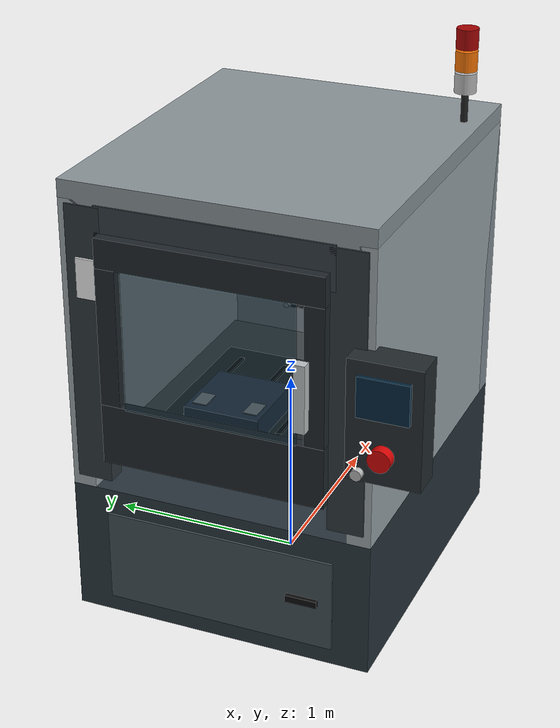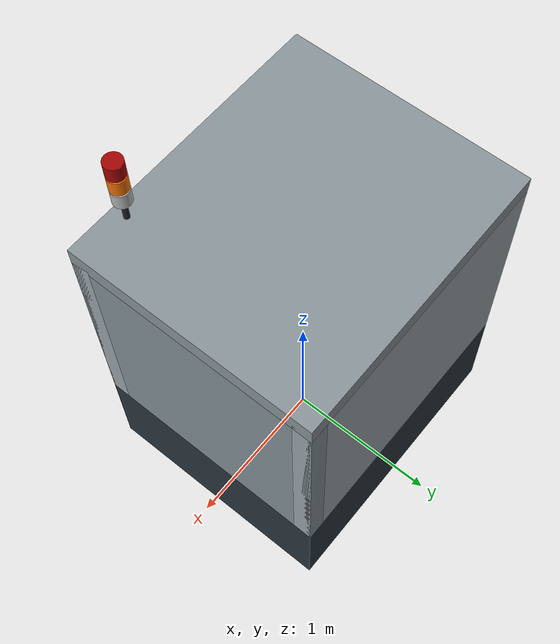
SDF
<?xml version="1.0"?>
<sdf version="1.9">
  <model name="cnc_machine">
    <static>false</static>
    <self_collide>false</self_collide>

    <!-- The enclosure is dynamic only so its door can move. This joint keeps
         the cabinet rigidly attached to the factory floor. -->
    <joint name="cabinet_world_joint" type="fixed">
      <parent>world</parent>
      <child>cabinet</child>
    </joint>

    <link name="cabinet">
      <inertial>
        <pose>0 0 1.05 0 0 0</pose>
        <mass>850</mass>
        <inertia>
          <ixx>240</ixx><iyy>280</iyy><izz>310</izz>
        </inertia>
      </inertial>

      <!-- Base cabinet and machine feet. -->
      <collision name="base_collision">
        <pose>0 0 0.35 0 0 0</pose>
        <geometry><box><size>1.80 1.55 0.70</size></box></geometry>
      </collision>
      <visual name="base_visual">
        <pose>0 0 0.35 0 0 0</pose>
        <geometry><box><size>1.80 1.55 0.70</size></box></geometry>
        <material><ambient>0.12 0.16 0.19 1</ambient><diffuse>0.16 0.21 0.24 1</diffuse><specular>0.35 0.35 0.35 1</specular></material>
      </visual>
      <visual name="lower_access_panel">
        <pose>-0.906 0 0.33 0 0 0</pose>
        <geometry><box><size>0.015 1.18 0.48</size></box></geometry>
        <material><diffuse>0.26 0.31 0.34 1</diffuse></material>
      </visual>
      <visual name="panel_handle">
        <pose>-0.92 -0.44 0.34 0 0 0</pose>
        <geometry><box><size>0.035 0.16 0.035</size></box></geometry>
        <material><diffuse>0.04 0.04 0.04 1</diffuse></material>
      </visual>

      <!-- Rear and side enclosure leave a genuine front opening. -->
      <collision name="rear_collision">
        <pose>0.84 0 1.45 0 0 0</pose>
        <geometry><box><size>0.12 1.55 1.50</size></box></geometry>
      </collision>
      <visual name="rear_visual">
        <pose>0.84 0 1.45 0 0 0</pose>
        <geometry><box><size>0.12 1.55 1.50</size></box></geometry>
        <material><diffuse>0.52 0.57 0.60 1</diffuse></material>
      </visual>
      <collision name="left_wall_collision">
        <pose>0 0.715 1.45 0 0 0</pose>
        <geometry><box><size>1.80 0.12 1.50</size></box></geometry>
      </collision>
      <visual name="left_wall_visual">
        <pose>0 0.715 1.45 0 0 0</pose>
        <geometry><box><size>1.80 0.12 1.50</size></box></geometry>
        <material><diffuse>0.62 0.66 0.68 1</diffuse></material>
      </visual>
      <collision name="right_wall_collision">
        <pose>0 -0.715 1.45 0 0 0</pose>
        <geometry><box><size>1.80 0.12 1.50</size></box></geometry>
      </collision>
      <visual name="right_wall_visual">
        <pose>0 -0.715 1.45 0 0 0</pose>
        <geometry><box><size>1.80 0.12 1.50</size></box></geometry>
        <material><diffuse>0.62 0.66 0.68 1</diffuse></material>
      </visual>
      <collision name="roof_collision">
        <pose>0 0 2.23 0 0 0</pose>
        <geometry><box><size>1.80 1.55 0.12</size></box></geometry>
      </collision>
      <visual name="roof_visual">
        <pose>0 0 2.23 0 0 0</pose>
        <geometry><box><size>1.80 1.55 0.12</size></box></geometry>
        <material><diffuse>0.55 0.59 0.61 1</diffuse></material>
      </visual>

      <!-- Front posts and lintel form the safety-door aperture. -->
      <collision name="front_left_post_collision">
        <pose>-0.86 0.65 1.47 0 0 0</pose>
        <geometry><box><size>0.10 0.18 1.42</size></box></geometry>
      </collision>
      <visual name="front_left_post_visual">
        <pose>-0.86 0.65 1.47 0 0 0</pose>
        <geometry><box><size>0.10 0.18 1.42</size></box></geometry>
        <material><diffuse>0.18 0.22 0.24 1</diffuse></material>
      </visual>
      <collision name="front_right_post_collision">
        <pose>-0.86 -0.65 1.47 0 0 0</pose>
        <geometry><box><size>0.10 0.18 1.42</size></box></geometry>
      </collision>
      <visual name="front_right_post_visual">
        <pose>-0.86 -0.65 1.47 0 0 0</pose>
        <geometry><box><size>0.10 0.18 1.42</size></box></geometry>
        <material><diffuse>0.18 0.22 0.24 1</diffuse></material>
      </visual>
      <collision name="front_lintel_collision">
        <pose>-0.86 0 2.08 0 0 0</pose>
        <geometry><box><size>0.10 1.18 0.22</size></box></geometry>
      </collision>
      <visual name="front_lintel_visual">
        <pose>-0.86 0 2.08 0 0 0</pose>
        <geometry><box><size>0.10 1.18 0.22</size></box></geometry>
        <material><diffuse>0.20 0.24 0.26 1</diffuse></material>
      </visual>

      <!-- Sloped chip pan, T-slot work table and two-jaw fixture. -->
      <collision name="chip_pan_collision">
        <pose>-0.05 0 0.87 0 0 0</pose>
        <geometry><box><size>1.45 1.24 0.10</size></box></geometry>
      </collision>
      <visual name="chip_pan_visual">
        <pose>-0.05 0 0.87 0 0 0</pose>
        <geometry><box><size>1.45 1.24 0.10</size></box></geometry>
        <material><diffuse>0.25 0.28 0.29 1</diffuse><specular>0.8 0.8 0.8 1</specular></material>
      </visual>
      <!-- The loading vise sits near the door on an extended table, within
           the UR5e workspace from a collision-free parking pose. -->
      <collision name="work_table_collision">
        <pose>-0.40 0 1.01 0 0 0</pose>
        <geometry><box><size>0.90 0.72 0.16</size></box></geometry>
      </collision>
      <visual name="work_table_visual">
        <pose>-0.40 0 1.01 0 0 0</pose>
        <geometry><box><size>0.90 0.72 0.16</size></box></geometry>
        <material><diffuse>0.12 0.14 0.15 1</diffuse><specular>0.9 0.9 0.9 1</specular></material>
      </visual>
      <visual name="table_slot_1"><pose>-0.40 -0.24 1.10 0 0 0</pose><geometry><box><size>0.66 0.025 0.012</size></box></geometry><material><diffuse>0.02 0.02 0.02 1</diffuse></material></visual>
      <visual name="table_slot_2"><pose>-0.40 0 1.10 0 0 0</pose><geometry><box><size>0.66 0.025 0.012</size></box></geometry><material><diffuse>0.02 0.02 0.02 1</diffuse></material></visual>
      <visual name="table_slot_3"><pose>-0.40 0.24 1.10 0 0 0</pose><geometry><box><size>0.66 0.025 0.012</size></box></geometry><material><diffuse>0.02 0.02 0.02 1</diffuse></material></visual>
      <!-- The zero-point pallet extends to the work-table front edge so the
           full 50 mm stock footprint remains supported at the loading datum. -->
      <collision name="fixture_base_collision"><pose>-0.65 0 1.16 0 0 0</pose><geometry><box><size>0.40 0.38 0.12</size></box></geometry></collision>
      <visual name="fixture_base_visual"><pose>-0.65 0 1.16 0 0 0</pose><geometry><box><size>0.40 0.38 0.12</size></box></geometry><material><diffuse>0.16 0.22 0.30 1</diffuse></material></visual>
      <!-- Flush locator marks represent a zero-point pallet. The physical
           fixture base supports stock without protruding into the wrist corridor. -->
      <visual name="fixture_jaw_left_visual"><pose>-0.75 0.13 1.2225 0 0 0</pose><geometry><box><size>0.11 0.07 0.005</size></box></geometry><material><diffuse>0.52 0.55 0.56 1</diffuse></material></visual>
      <visual name="fixture_jaw_right_visual"><pose>-0.75 -0.13 1.2225 0 0 0</pose><geometry><box><size>0.11 0.07 0.005</size></box></geometry><material><diffuse>0.52 0.55 0.56 1</diffuse></material></visual>

      <!-- Spindle head is visually detailed and physically blocks invalid paths. -->
      <collision name="spindle_head_collision"><pose>0.56 0 1.55 0 0 0</pose><geometry><box><size>0.46 0.52 0.58</size></box></geometry></collision>
      <visual name="spindle_head_visual"><pose>0.56 0 1.55 0 0 0</pose><geometry><box><size>0.46 0.52 0.58</size></box></geometry><material><diffuse>0.43 0.47 0.48 1</diffuse></material></visual>
      <collision name="spindle_nose_collision"><pose>0.25 0 1.44 0 1.5708 0</pose><geometry><cylinder><radius>0.105</radius><length>0.22</length></cylinder></geometry></collision>
      <visual name="spindle_nose_visual"><pose>0.25 0 1.44 0 1.5708 0</pose><geometry><cylinder><radius>0.105</radius><length>0.22</length></cylinder></geometry><material><diffuse>0.16 0.17 0.18 1</diffuse><specular>1 1 1 1</specular></material></visual>
      <visual name="tool_holder"><pose>0.09 0 1.44 0 1.5708 0</pose><geometry><cylinder><radius>0.050</radius><length>0.13</length></cylinder></geometry><material><diffuse>0.08 0.09 0.10 1</diffuse></material></visual>
      <visual name="cutting_tool"><pose>-0.015 0 1.44 0 1.5708 0</pose><geometry><cylinder><radius>0.014</radius><length>0.10</length></cylinder></geometry><material><diffuse>0.55 0.58 0.60 1</diffuse></material></visual>

      <!-- Operator panel, E-stop, status display and stack light. -->
      <collision name="hmi_collision"><pose>-0.93 -0.86 1.42 0 0 0</pose><geometry><box><size>0.16 0.36 0.60</size></box></geometry></collision>
      <visual name="hmi_body"><pose>-0.93 -0.86 1.42 0 0 0</pose><geometry><box><size>0.16 0.36 0.60</size></box></geometry><material><diffuse>0.14 0.17 0.18 1</diffuse></material></visual>
      <visual name="hmi_screen"><pose>-1.02 -0.86 1.55 0 0 0</pose><geometry><box><size>0.025 0.25 0.20</size></box></geometry><material><emissive>0.02 0.30 0.52 1</emissive><diffuse>0.02 0.15 0.24 1</diffuse></material></visual>
      <visual name="emergency_stop"><pose>-1.04 -0.86 1.27 0 1.5708 0</pose><geometry><cylinder><radius>0.055</radius><length>0.055</length></cylinder></geometry><material><diffuse>0.85 0.02 0.02 1</diffuse></material></visual>
      <visual name="cycle_start"><pose>-1.04 -0.75 1.17 0 1.5708 0</pose><geometry><cylinder><radius>0.027</radius><length>0.035</length></cylinder></geometry><material><emissive>0.02 0.65 0.08 1</emissive></material></visual>
      <visual name="stack_pole"><pose>0.57 -0.68 2.46 0 0 0</pose><geometry><cylinder><radius>0.018</radius><length>0.42</length></cylinder></geometry><material><diffuse>0.12 0.12 0.12 1</diffuse></material></visual>
      <visual name="stack_red"><pose>0.57 -0.68 2.71 0 0 0</pose><geometry><cylinder><radius>0.055</radius><length>0.10</length></cylinder></geometry><material><diffuse>0.65 0.02 0.02 1</diffuse></material></visual>
      <visual name="stack_amber"><pose>0.57 -0.68 2.60 0 0 0</pose><geometry><cylinder><radius>0.055</radius><length>0.10</length></cylinder></geometry><material><diffuse>0.95 0.45 0.02 1</diffuse></material></visual>
      <visual name="stack_green"><pose>0.57 -0.68 2.49 0 0 0</pose><geometry><cylinder><radius>0.055</radius><length>0.10</length></cylinder></geometry><material><emissive>0.02 0.42 0.05 1</emissive></material></visual>

      <!-- AprilTag mounting plate; the detector texture is a separate asset step. -->
      <visual name="tag_plate"><pose>-0.93 0.58 1.83 0 1.5708 0</pose><geometry><box><size>0.20 0.20 0.012</size></box></geometry><material><diffuse>0.96 0.96 0.96 1</diffuse></material></visual>

      <!-- These low-rate contacts make model-to-planning-scene mismatches
           observable in regression logs. They do not affect collision forces. -->
      <sensor name="base_contact" type="contact">
        <always_on>true</always_on><update_rate>20</update_rate>
        <contact><collision>base_collision</collision>
          <topic>/factory/cnc/contacts</topic></contact>
      </sensor>
      <sensor name="chip_pan_contact" type="contact">
        <always_on>true</always_on><update_rate>20</update_rate>
        <contact><collision>chip_pan_collision</collision>
          <topic>/factory/cnc/contacts</topic></contact>
      </sensor>
      <sensor name="work_table_contact" type="contact">
        <always_on>true</always_on><update_rate>20</update_rate>
        <contact><collision>work_table_collision</collision>
          <topic>/factory/cnc/contacts</topic></contact>
      </sensor>
      <sensor name="fixture_base_contact" type="contact">
        <always_on>true</always_on><update_rate>20</update_rate>
        <contact><collision>fixture_base_collision</collision>
          <topic>/factory/cnc/contacts</topic></contact>
      </sensor>
      <sensor name="front_left_post_contact" type="contact">
        <always_on>true</always_on><update_rate>20</update_rate>
        <contact><collision>front_left_post_collision</collision>
          <topic>/factory/cnc/contacts</topic></contact>
      </sensor>
      <sensor name="front_right_post_contact" type="contact">
        <always_on>true</always_on><update_rate>20</update_rate>
        <contact><collision>front_right_post_collision</collision>
          <topic>/factory/cnc/contacts</topic></contact>
      </sensor>
      <sensor name="front_lintel_contact" type="contact">
        <always_on>true</always_on><update_rate>20</update_rate>
        <contact><collision>front_lintel_collision</collision>
          <topic>/factory/cnc/contacts</topic></contact>
      </sensor>
    </link>

    <link name="sliding_door">
      <pose>-0.94 0 1.48 0 0 0</pose>
      <inertial><mass>38</mass><inertia><ixx>5.4</ixx><iyy>1.9</iyy><izz>6.8</izz></inertia></inertial>
      <collision name="door_collision"><geometry><box><size>0.055 1.13 1.16</size></box></geometry></collision>
      <!-- Four visual rails leave a genuine transparent window opening. The
           single full-size collision still represents the safety door. -->
      <visual name="door_frame_top"><pose>0 0 0.505 0 0 0</pose><geometry><box><size>0.055 1.13 0.15</size></box></geometry><material><diffuse>0.12 0.15 0.17 1</diffuse></material></visual>
      <visual name="door_frame_bottom"><pose>0 0 -0.425 0 0 0</pose><geometry><box><size>0.055 1.13 0.31</size></box></geometry><material><diffuse>0.12 0.15 0.17 1</diffuse></material></visual>
      <visual name="door_frame_left"><pose>0 0.515 0.08 0 0 0</pose><geometry><box><size>0.055 0.10 0.70</size></box></geometry><material><diffuse>0.12 0.15 0.17 1</diffuse></material></visual>
      <visual name="door_frame_right"><pose>0 -0.515 0.08 0 0 0</pose><geometry><box><size>0.055 0.10 0.70</size></box></geometry><material><diffuse>0.12 0.15 0.17 1</diffuse></material></visual>

      <visual name="window"><pose>-0.032 0 0.08 0 0 0</pose><geometry><box><size>0.018 0.86 0.70</size></box></geometry><material><ambient>0.04 0.13 0.18 0.45</ambient><diffuse>0.05 0.18 0.24 0.45</diffuse><specular>0.8 0.8 0.8 0.45</specular></material><transparency>0.55</transparency></visual>
      <visual name="door_handle"><pose>-0.07 -0.47 0 0 0 0</pose><geometry><box><size>0.05 0.055 0.34</size></box></geometry><material><diffuse>0.75 0.77 0.78 1</diffuse></material></visual>
      <sensor name="door_contact" type="contact">
        <always_on>true</always_on><update_rate>20</update_rate>
        <contact><collision>door_collision</collision>
          <topic>/factory/cnc/contacts</topic></contact>
      </sensor>
    </link>
    <joint name="sliding_door_joint" type="prismatic">
      <parent>cabinet</parent>
      <child>sliding_door</child>
      <axis>
        <xyz>0 1 0</xyz>
        <limit><lower>0</lower><upper>1.18</upper><effort>1200</effort><velocity>0.55</velocity></limit>
        <dynamics><damping>80</damping><friction>15</friction></dynamics>
      </axis>
    </joint>

    <plugin filename="gz-sim-joint-position-controller-system" name="gz::sim::systems::JointPositionController">
      <joint_name>sliding_door_joint</joint_name>
      <p_gain>1600</p_gain><i_gain>3</i_gain><d_gain>220</d_gain>
      <i_max>10</i_max><i_min>-10</i_min><cmd_max>1200</cmd_max><cmd_min>-1200</cmd_min>
      <initial_position>0</initial_position>
    </plugin>

    <!-- Equivalent to a real door-open limit switch. The ROS bridge exposes
         this measured joint position independently from the PLC command. -->
    <plugin filename="gz-sim-joint-state-publisher-system"
            name="gz::sim::systems::JointStatePublisher">
      <joint_name>sliding_door_joint</joint_name>
    </plugin>
  </model>
</sdf>
